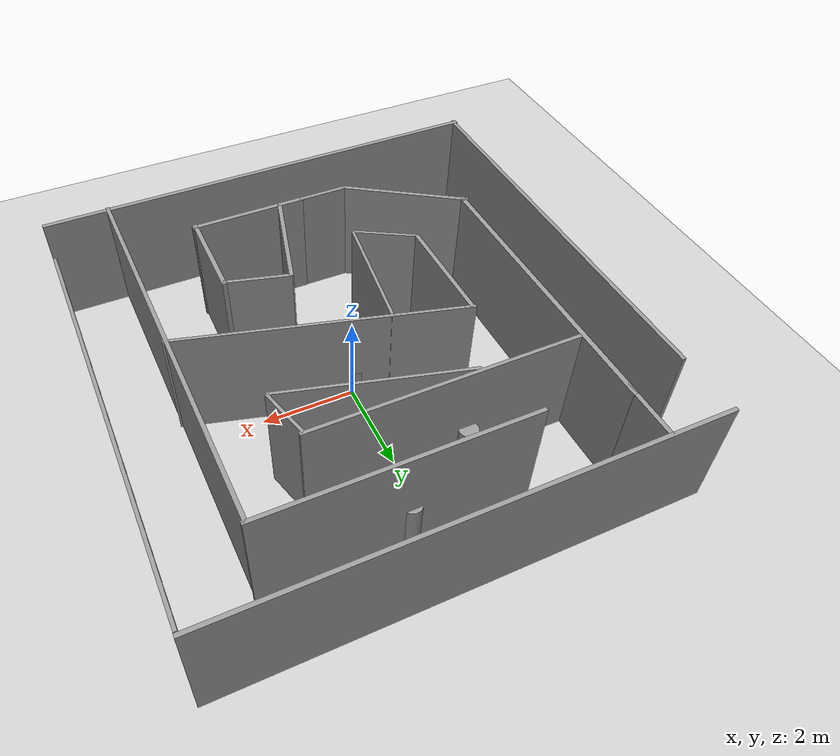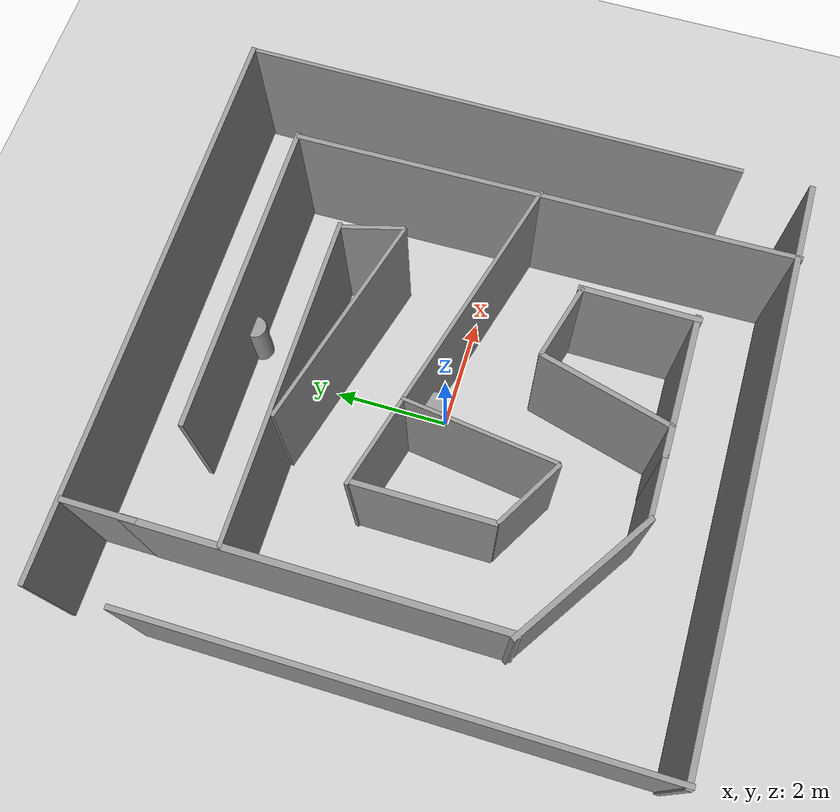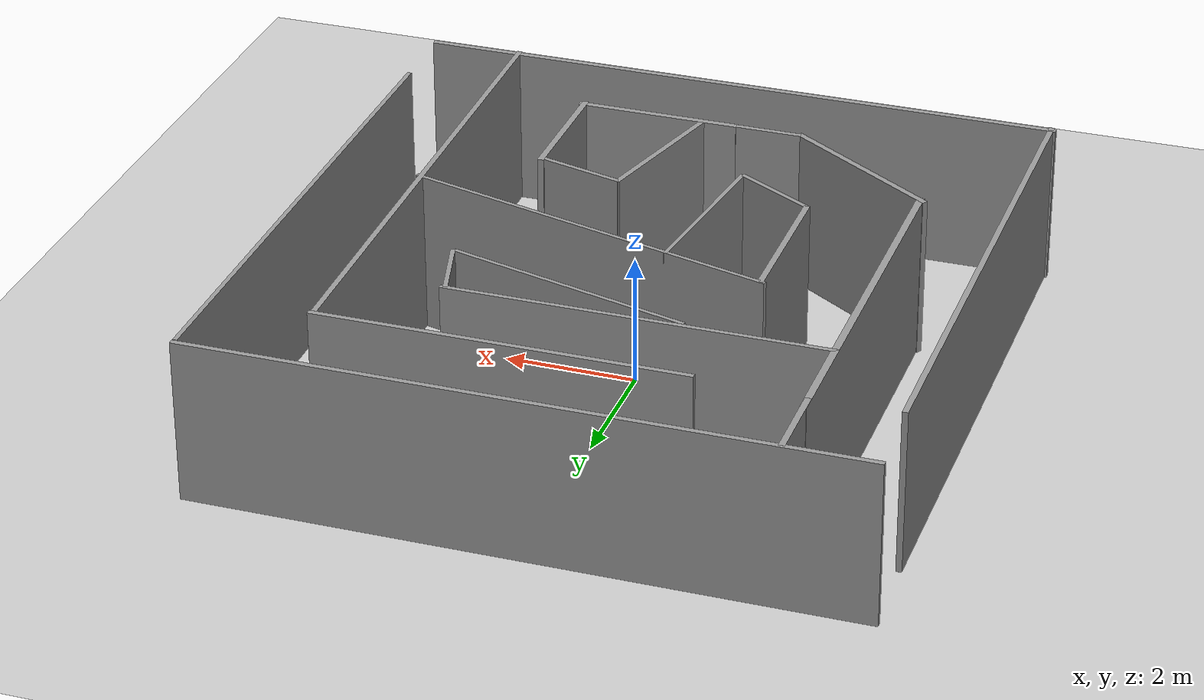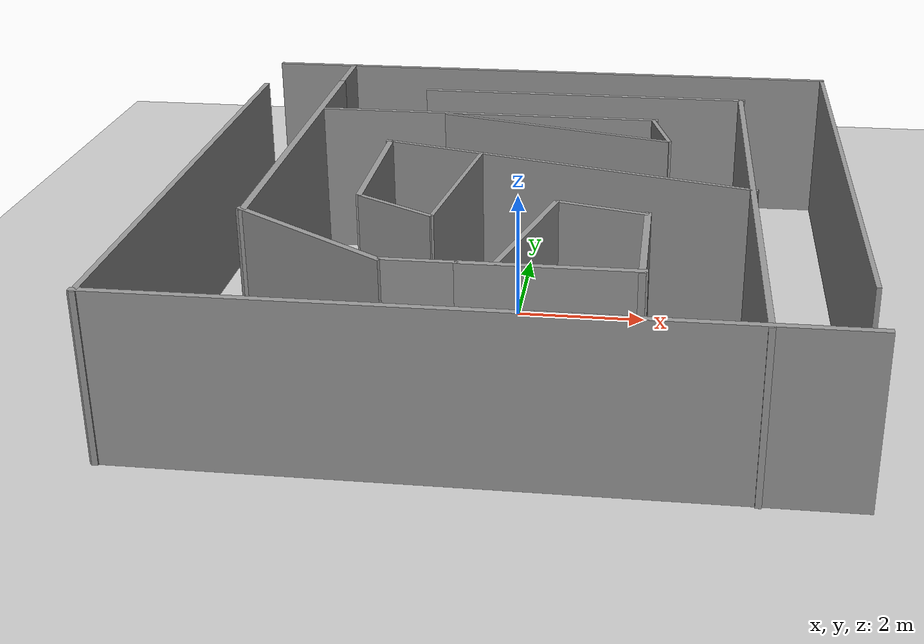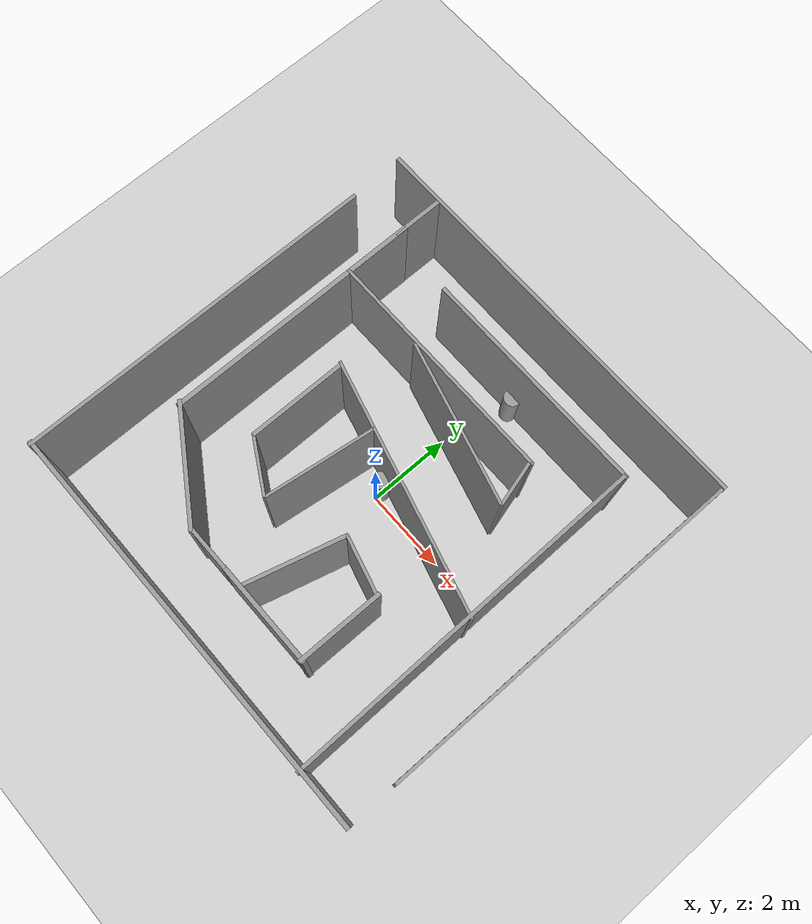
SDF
<sdf version="1.7">
 <world name="default">
  <model name="ground_plane">
   <static>1</static>
   <link name="link">
    <collision name="collision">
     <geometry><plane><normal>0 0 1</normal><size>100 100</size></plane></geometry>
     <surface>
      <contact><collide_bitmask>65535</collide_bitmask></contact>
      <friction><ode><mu>100</mu><mu2>50</mu2></ode></friction>
     </surface>
    </collision>
    <visual name="visual">
     <cast_shadows>0</cast_shadows>
     <geometry><plane><normal>0 0 1</normal><size>100 100</size></plane></geometry>
     <material>
      <script><uri>file://media/materials/scripts/gazebo.material</uri><name>Gazebo/Grey</name></script>
     </material>
    </visual>
   </link>
  </model>
  <model name="obstacle1">
   <link name="link">
    <inertial>
     <mass>1</mass>
     <inertia><ixx>0.145833</ixx><ixy>0</ixy><ixz>0</ixz><iyy>0.145833</iyy><iyz>0</iyz><izz>0.125</izz></inertia>
    </inertial>
    <visual name="visual">
     <geometry><cylinder><radius>0.2</radius><length>1</length></cylinder></geometry>
     <material>
      <script><name>Gazebo/Grey</name><uri>file://media/materials/scripts/gazebo.material</uri></script>
      <shader type="pixel"><normal_map>__default__</normal_map></shader>
      <ambient>0.3 0.3 0.3 1</ambient>
      <diffuse>0.7 0.7 0.7 1</diffuse>
      <specular>0.01 0.01 0.01 1</specular>
      <emissive>0 0 0 1</emissive>
     </material>
    </visual>
    <collision name="collision">
     <geometry><cylinder><radius>0.2</radius><length>1</length></cylinder></geometry>
     <surface>
      <friction>
       <ode><mu>1</mu><mu2>1</mu2><fdir1>0 0 0</fdir1><slip1>0</slip1><slip2>0</slip2></ode>
       <torsional>
        <coefficient>1</coefficient>
        <patch_radius>0</patch_radius>
        <surface_radius>0</surface_radius>
        <use_patch_radius>1</use_patch_radius>
        <ode><slip>0</slip></ode>
       </torsional>
      </friction>
      <bounce><restitution_coefficient>0</restitution_coefficient><threshold>1e+06</threshold></bounce>
      <contact>
       <collide_without_contact>0</collide_without_contact>
       <collide_without_contact_bitmask>1</collide_without_contact_bitmask>
       <collide_bitmask>1</collide_bitmask>
       <ode>
        <soft_cfm>0</soft_cfm>
        <soft_erp>0.2</soft_erp>
        <kp>1e+13</kp>
        <kd>1</kd>
        <max_vel>0.01</max_vel>
        <min_depth>0</min_depth>
       </ode>
       <bullet>
        <split_impulse>1</split_impulse>
        <split_impulse_penetration_threshold>-0.01</split_impulse_penetration_threshold>
        <soft_cfm>0</soft_cfm>
        <soft_erp>0.2</soft_erp>
        <kp>1e+13</kp>
        <kd>1</kd>
       </bullet>
      </contact>
     </surface>
    </collision>
   </link>
   <static>1</static>
   <pose>-0.024801 0.181411 0.5 0 -0 0</pose>
  </model>
  <model name="obstacle1_clone_clone_0">
   <link name="link">
    <inertial>
     <mass>1</mass>
     <inertia><ixx>0.145833</ixx><ixy>0</ixy><ixz>0</ixz><iyy>0.145833</iyy><iyz>0</iyz><izz>0.125</izz></inertia>
    </inertial>
    <visual name="visual">
     <geometry><cylinder><radius>0.2</radius><length>1</length></cylinder></geometry>
     <material>
      <script><name>Gazebo/Grey</name><uri>file://media/materials/scripts/gazebo.material</uri></script>
      <shader type="pixel"><normal_map>__default__</normal_map></shader>
      <ambient>0.3 0.3 0.3 1</ambient>
      <diffuse>0.7 0.7 0.7 1</diffuse>
      <specular>0.01 0.01 0.01 1</specular>
      <emissive>0 0 0 1</emissive>
     </material>
    </visual>
    <collision name="collision">
     <geometry><cylinder><radius>0.2</radius><length>1</length></cylinder></geometry>
     <surface>
      <friction>
       <ode><mu>1</mu><mu2>1</mu2><fdir1>0 0 0</fdir1><slip1>0</slip1><slip2>0</slip2></ode>
       <torsional>
        <coefficient>1</coefficient>
        <patch_radius>0</patch_radius>
        <surface_radius>0</surface_radius>
        <use_patch_radius>1</use_patch_radius>
        <ode><slip>0</slip></ode>
       </torsional>
      </friction>
      <bounce><restitution_coefficient>0</restitution_coefficient><threshold>1e+06</threshold></bounce>
      <contact>
       <collide_without_contact>0</collide_without_contact>
       <collide_without_contact_bitmask>1</collide_without_contact_bitmask>
       <collide_bitmask>1</collide_bitmask>
       <ode>
        <soft_cfm>0</soft_cfm>
        <soft_erp>0.2</soft_erp>
        <kp>1e+13</kp>
        <kd>1</kd>
        <max_vel>0.01</max_vel>
        <min_depth>0</min_depth>
       </ode>
       <bullet>
        <split_impulse>1</split_impulse>
        <split_impulse_penetration_threshold>-0.01</split_impulse_penetration_threshold>
        <soft_cfm>0</soft_cfm>
        <soft_erp>0.2</soft_erp>
        <kp>1e+13</kp>
        <kd>1</kd>
       </bullet>
      </contact>
     </surface>
    </collision>
   </link>
   <static>1</static>
   <pose>0.443455 3.59898 0.5 0 -0 0</pose>
  </model>
  <model name="obstacle1_clone_clone_1">
   <link name="link">
    <inertial>
     <mass>1</mass>
     <inertia><ixx>0.145833</ixx><ixy>0</ixy><ixz>0</ixz><iyy>0.145833</iyy><iyz>0</iyz><izz>0.125</izz></inertia>
    </inertial>
    <visual name="visual">
     <geometry><cylinder><radius>0.2</radius><length>1</length></cylinder></geometry>
     <material>
      <script><name>Gazebo/Grey</name><uri>file://media/materials/scripts/gazebo.material</uri></script>
      <shader type="pixel"><normal_map>__default__</normal_map></shader>
      <ambient>0.3 0.3 0.3 1</ambient>
      <diffuse>0.7 0.7 0.7 1</diffuse>
      <specular>0.01 0.01 0.01 1</specular>
      <emissive>0 0 0 1</emissive>
     </material>
    </visual>
    <collision name="collision">
     <geometry><cylinder><radius>0.2</radius><length>1</length></cylinder></geometry>
     <surface>
      <friction>
       <ode><mu>1</mu><mu2>1</mu2><fdir1>0 0 0</fdir1><slip1>0</slip1><slip2>0</slip2></ode>
       <torsional>
        <coefficient>1</coefficient>
        <patch_radius>0</patch_radius>
        <surface_radius>0</surface_radius>
        <use_patch_radius>1</use_patch_radius>
        <ode><slip>0</slip></ode>
       </torsional>
      </friction>
      <bounce><restitution_coefficient>0</restitution_coefficient><threshold>1e+06</threshold></bounce>
      <contact>
       <collide_without_contact>0</collide_without_contact>
       <collide_without_contact_bitmask>1</collide_without_contact_bitmask>
       <collide_bitmask>1</collide_bitmask>
       <ode>
        <soft_cfm>0</soft_cfm>
        <soft_erp>0.2</soft_erp>
        <kp>1e+13</kp>
        <kd>1</kd>
        <max_vel>0.01</max_vel>
        <min_depth>0</min_depth>
       </ode>
       <bullet>
        <split_impulse>1</split_impulse>
        <split_impulse_penetration_threshold>-0.01</split_impulse_penetration_threshold>
        <soft_cfm>0</soft_cfm>
        <soft_erp>0.2</soft_erp>
        <kp>1e+13</kp>
        <kd>1</kd>
       </bullet>
      </contact>
     </surface>
    </collision>
   </link>
   <static>1</static>
   <pose>-1.30434 2.53539 0.5 0 -0 0</pose>
  </model>
  <model name="map10x10_0">
   <link name="Wall_21">
    <pose>0 5.05436 0 0 -0 0</pose>
    <inertial>
     <inertia><ixx>0</ixx><ixy>0</ixy><ixz>0</ixz><iyy>0</iyy><iyz>0</iyz><izz>0</izz></inertia>
     <mass>0</mass>
    </inertial>
    <visual name="Wall_21_Visual">
     <pose>0 0 1.25 0 -0 0</pose>
     <geometry><box><size>10 0.085426 2.5</size></box></geometry>
     <material>
      <script><uri>file://media/materials/scripts/gazebo.material</uri><name>Gazebo/Grey</name></script>
      <ambient>1 1 1 1</ambient>
      <shader type="pixel"/>
     </material>
     <meta><layer>0</layer></meta>
    </visual>
    <collision name="Wall_21_Collision">
     <pose>0 0 1.25 0 -0 0</pose>
     <geometry><box><size>10 0.085426 2.5</size></box></geometry>
     <surface>
      <friction>
       <ode><mu>1</mu><mu2>1</mu2><fdir1>0 0 0</fdir1><slip1>0</slip1><slip2>0</slip2></ode>
       <torsional>
        <coefficient>1</coefficient>
        <patch_radius>0</patch_radius>
        <surface_radius>0</surface_radius>
        <use_patch_radius>1</use_patch_radius>
        <ode><slip>0</slip></ode>
       </torsional>
      </friction>
      <bounce><restitution_coefficient>0</restitution_coefficient><threshold>1e+06</threshold></bounce>
      <contact>
       <collide_without_contact>0</collide_without_contact>
       <collide_without_contact_bitmask>1</collide_without_contact_bitmask>
       <collide_bitmask>1</collide_bitmask>
       <ode>
        <soft_cfm>0</soft_cfm>
        <soft_erp>0.2</soft_erp>
        <kp>1e+13</kp>
        <kd>1</kd>
        <max_vel>0.01</max_vel>
        <min_depth>0</min_depth>
       </ode>
       <bullet>
        <split_impulse>1</split_impulse>
        <split_impulse_penetration_threshold>-0.01</split_impulse_penetration_threshold>
        <soft_cfm>0</soft_cfm>
        <soft_erp>0.2</soft_erp>
        <kp>1e+13</kp>
        <kd>1</kd>
       </bullet>
      </contact>
     </surface>
    </collision>
   </link>
   <link name="Wall_22">
    <pose>4.96053 0.625 0 0 0 -1.5708</pose>
    <inertial>
     <inertia><ixx>0</ixx><ixy>0</ixy><ixz>0</ixz><iyy>0</iyy><iyz>0</iyz><izz>0</izz></inertia>
     <mass>0</mass>
    </inertial>
    <visual name="Wall_22_Visual">
     <pose>0 0 1.25 0 -0 0</pose>
     <geometry><box><size>8.75 0.068596 2.5</size></box></geometry>
     <material>
      <script><uri>file://media/materials/scripts/gazebo.material</uri><name>Gazebo/Grey</name></script>
      <ambient>1 1 1 1</ambient>
      <shader type="pixel"/>
     </material>
     <meta><layer>0</layer></meta>
    </visual>
    <collision name="Wall_22_Collision">
     <pose>0 0 1.25 0 -0 0</pose>
     <geometry><box><size>8.75 0.068596 2.5</size></box></geometry>
     <surface>
      <friction>
       <ode><mu>1</mu><mu2>1</mu2><fdir1>0 0 0</fdir1><slip1>0</slip1><slip2>0</slip2></ode>
       <torsional>
        <coefficient>1</coefficient>
        <patch_radius>0</patch_radius>
        <surface_radius>0</surface_radius>
        <use_patch_radius>1</use_patch_radius>
        <ode><slip>0</slip></ode>
       </torsional>
      </friction>
      <bounce><restitution_coefficient>0</restitution_coefficient><threshold>1e+06</threshold></bounce>
      <contact>
       <collide_without_contact>0</collide_without_contact>
       <collide_without_contact_bitmask>1</collide_without_contact_bitmask>
       <collide_bitmask>1</collide_bitmask>
       <ode>
        <soft_cfm>0</soft_cfm>
        <soft_erp>0.2</soft_erp>
        <kp>1e+13</kp>
        <kd>1</kd>
        <max_vel>0.01</max_vel>
        <min_depth>0</min_depth>
       </ode>
       <bullet>
        <split_impulse>1</split_impulse>
        <split_impulse_penetration_threshold>-0.01</split_impulse_penetration_threshold>
        <soft_cfm>0</soft_cfm>
        <soft_erp>0.2</soft_erp>
        <kp>1e+13</kp>
        <kd>1</kd>
       </bullet>
      </contact>
     </surface>
    </collision>
   </link>
   <link name="Wall_25">
    <pose>0 -4.925 0 0 -0 0</pose>
    <inertial>
     <inertia><ixx>0</ixx><ixy>0</ixy><ixz>0</ixz><iyy>0</iyy><iyz>0</iyz><izz>0</izz></inertia>
     <mass>0</mass>
    </inertial>
    <visual name="Wall_25_Visual">
     <pose>0 0 1.25 0 -0 0</pose>
     <geometry><box><size>10 0.099762 2.5</size></box></geometry>
     <material>
      <script><uri>file://media/materials/scripts/gazebo.material</uri><name>Gazebo/Grey</name></script>
      <ambient>1 1 1 1</ambient>
      <shader type="pixel"/>
     </material>
     <meta><layer>0</layer></meta>
    </visual>
    <collision name="Wall_25_Collision">
     <pose>0 0 1.25 0 -0 0</pose>
     <geometry><box><size>10 0.099762 2.5</size></box></geometry>
     <surface>
      <friction>
       <ode><mu>1</mu><mu2>1</mu2><fdir1>0 0 0</fdir1><slip1>0</slip1><slip2>0</slip2></ode>
       <torsional>
        <coefficient>1</coefficient>
        <patch_radius>0</patch_radius>
        <surface_radius>0</surface_radius>
        <use_patch_radius>1</use_patch_radius>
        <ode><slip>0</slip></ode>
       </torsional>
      </friction>
      <bounce><restitution_coefficient>0</restitution_coefficient><threshold>1e+06</threshold></bounce>
      <contact>
       <collide_without_contact>0</collide_without_contact>
       <collide_without_contact_bitmask>1</collide_without_contact_bitmask>
       <collide_bitmask>1</collide_bitmask>
       <ode>
        <soft_cfm>0</soft_cfm>
        <soft_erp>0.2</soft_erp>
        <kp>1e+13</kp>
        <kd>1</kd>
        <max_vel>0.01</max_vel>
        <min_depth>0</min_depth>
       </ode>
       <bullet>
        <split_impulse>1</split_impulse>
        <split_impulse_penetration_threshold>-0.01</split_impulse_penetration_threshold>
        <soft_cfm>0</soft_cfm>
        <soft_erp>0.2</soft_erp>
        <kp>1e+13</kp>
        <kd>1</kd>
       </bullet>
      </contact>
     </surface>
    </collision>
   </link>
   <link name="Wall_27">
    <pose>-4.925 -0.625 0 0 -0 1.5708</pose>
    <inertial>
     <inertia><ixx>0</ixx><ixy>0</ixy><ixz>0</ixz><iyy>0</iyy><iyz>0</iyz><izz>0</izz></inertia>
     <mass>0</mass>
    </inertial>
    <visual name="Wall_27_Visual">
     <pose>0 0 1.25 0 -0 0</pose>
     <geometry><box><size>8.75 0.087231 2.5</size></box></geometry>
     <material>
      <script><uri>file://media/materials/scripts/gazebo.material</uri><name>Gazebo/Grey</name></script>
      <ambient>1 1 1 1</ambient>
      <shader type="pixel"/>
     </material>
     <meta><layer>0</layer></meta>
    </visual>
    <collision name="Wall_27_Collision">
     <pose>0 0 1.25 0 -0 0</pose>
     <geometry><box><size>8.75 0.087231 2.5</size></box></geometry>
     <surface>
      <friction>
       <ode><mu>1</mu><mu2>1</mu2><fdir1>0 0 0</fdir1><slip1>0</slip1><slip2>0</slip2></ode>
       <torsional>
        <coefficient>1</coefficient>
        <patch_radius>0</patch_radius>
        <surface_radius>0</surface_radius>
        <use_patch_radius>1</use_patch_radius>
        <ode><slip>0</slip></ode>
       </torsional>
      </friction>
      <bounce><restitution_coefficient>0</restitution_coefficient><threshold>1e+06</threshold></bounce>
      <contact>
       <collide_without_contact>0</collide_without_contact>
       <collide_without_contact_bitmask>1</collide_without_contact_bitmask>
       <collide_bitmask>1</collide_bitmask>
       <ode>
        <soft_cfm>0</soft_cfm>
        <soft_erp>0.2</soft_erp>
        <kp>1e+13</kp>
        <kd>1</kd>
        <max_vel>0.01</max_vel>
        <min_depth>0</min_depth>
       </ode>
       <bullet>
        <split_impulse>1</split_impulse>
        <split_impulse_penetration_threshold>-0.01</split_impulse_penetration_threshold>
        <soft_cfm>0</soft_cfm>
        <soft_erp>0.2</soft_erp>
        <kp>1e+13</kp>
        <kd>1</kd>
       </bullet>
      </contact>
     </surface>
    </collision>
   </link>
   <link name="Wall_32">
    <pose>-3.61806 0.947594 0 0 -0 1.5708</pose>
    <inertial>
     <inertia><ixx>0</ixx><ixy>0</ixy><ixz>0</ixz><iyy>0</iyy><iyz>0</iyz><izz>0</izz></inertia>
     <mass>0</mass>
    </inertial>
    <visual name="Wall_32_Visual">
     <pose>0 0 1.25 0 -0 0</pose>
     <geometry><box><size>6.25 0.108502 2.5</size></box></geometry>
     <material>
      <script><uri>file://media/materials/scripts/gazebo.material</uri><name>Gazebo/Grey</name></script>
      <ambient>1 1 1 1</ambient>
      <shader type="pixel"/>
     </material>
     <meta><layer>0</layer></meta>
    </visual>
    <collision name="Wall_32_Collision">
     <pose>0 0 1.25 0 -0 0</pose>
     <geometry><box><size>6.25 0.108502 2.5</size></box></geometry>
     <surface>
      <friction>
       <ode><mu>1</mu><mu2>1</mu2><fdir1>0 0 0</fdir1><slip1>0</slip1><slip2>0</slip2></ode>
       <torsional>
        <coefficient>1</coefficient>
        <patch_radius>0</patch_radius>
        <surface_radius>0</surface_radius>
        <use_patch_radius>1</use_patch_radius>
        <ode><slip>0</slip></ode>
       </torsional>
      </friction>
      <bounce><restitution_coefficient>0</restitution_coefficient><threshold>1e+06</threshold></bounce>
      <contact>
       <collide_without_contact>0</collide_without_contact>
       <collide_without_contact_bitmask>1</collide_without_contact_bitmask>
       <collide_bitmask>1</collide_bitmask>
       <ode>
        <soft_cfm>0</soft_cfm>
        <soft_erp>0.2</soft_erp>
        <kp>1e+13</kp>
        <kd>1</kd>
        <max_vel>0.01</max_vel>
        <min_depth>0</min_depth>
       </ode>
       <bullet>
        <split_impulse>1</split_impulse>
        <split_impulse_penetration_threshold>-0.01</split_impulse_penetration_threshold>
        <soft_cfm>0</soft_cfm>
        <soft_erp>0.2</soft_erp>
        <kp>1e+13</kp>
        <kd>1</kd>
       </bullet>
      </contact>
     </surface>
    </collision>
   </link>
   <link name="Wall_35">
    <pose>-2.53005 -2.83932 0 0 0 -0.584164</pose>
    <inertial>
     <inertia><ixx>0</ixx><ixy>0</ixy><ixz>0</ixz><iyy>0</iyy><iyz>0</iyz><izz>0</izz></inertia>
     <mass>0</mass>
    </inertial>
    <visual name="Wall_35_Visual">
     <pose>0 0 1.25 0 -0 0</pose>
     <geometry><box><size>2.82238 0.093217 2.5</size></box></geometry>
     <material>
      <script><uri>file://media/materials/scripts/gazebo.material</uri><name>Gazebo/Grey</name></script>
      <ambient>1 1 1 1</ambient>
      <shader type="pixel"/>
     </material>
     <meta><layer>0</layer></meta>
    </visual>
    <collision name="Wall_35_Collision">
     <pose>0 0 1.25 0 -0 0</pose>
     <geometry><box><size>2.82238 0.093217 2.5</size></box></geometry>
     <surface>
      <friction>
       <ode><mu>1</mu><mu2>1</mu2><fdir1>0 0 0</fdir1><slip1>0</slip1><slip2>0</slip2></ode>
       <torsional>
        <coefficient>1</coefficient>
        <patch_radius>0</patch_radius>
        <surface_radius>0</surface_radius>
        <use_patch_radius>1</use_patch_radius>
        <ode><slip>0</slip></ode>
       </torsional>
      </friction>
      <bounce><restitution_coefficient>0</restitution_coefficient><threshold>1e+06</threshold></bounce>
      <contact>
       <collide_without_contact>0</collide_without_contact>
       <collide_without_contact_bitmask>1</collide_without_contact_bitmask>
       <collide_bitmask>1</collide_bitmask>
       <ode>
        <soft_cfm>0</soft_cfm>
        <soft_erp>0.2</soft_erp>
        <kp>1e+13</kp>
        <kd>1</kd>
        <max_vel>0.01</max_vel>
        <min_depth>0</min_depth>
       </ode>
       <bullet>
        <split_impulse>1</split_impulse>
        <split_impulse_penetration_threshold>-0.01</split_impulse_penetration_threshold>
        <soft_cfm>0</soft_cfm>
        <soft_erp>0.2</soft_erp>
        <kp>1e+13</kp>
        <kd>1</kd>
       </bullet>
      </contact>
     </surface>
    </collision>
   </link>
   <link name="Wall_36">
    <pose>-0.865434 -3.57623 0 0 -0 0</pose>
    <inertial>
     <inertia><ixx>0</ixx><ixy>0</ixy><ixz>0</ixz><iyy>0</iyy><iyz>0</iyz><izz>0</izz></inertia>
     <mass>0</mass>
    </inertial>
    <visual name="Wall_36_Visual">
     <pose>0 0 1.25 0 -0 0</pose>
     <geometry><box><size>1.06435 0.085458 2.5</size></box></geometry>
     <material>
      <script><uri>file://media/materials/scripts/gazebo.material</uri><name>Gazebo/Grey</name></script>
      <ambient>1 1 1 1</ambient>
      <shader type="pixel"/>
     </material>
     <meta><layer>0</layer></meta>
    </visual>
    <collision name="Wall_36_Collision">
     <pose>0 0 1.25 0 -0 0</pose>
     <geometry><box><size>1.06435 0.085458 2.5</size></box></geometry>
     <surface>
      <friction>
       <ode><mu>1</mu><mu2>1</mu2><fdir1>0 0 0</fdir1><slip1>0</slip1><slip2>0</slip2></ode>
       <torsional>
        <coefficient>1</coefficient>
        <patch_radius>0</patch_radius>
        <surface_radius>0</surface_radius>
        <use_patch_radius>1</use_patch_radius>
        <ode><slip>0</slip></ode>
       </torsional>
      </friction>
      <bounce><restitution_coefficient>0</restitution_coefficient><threshold>1e+06</threshold></bounce>
      <contact>
       <collide_without_contact>0</collide_without_contact>
       <collide_without_contact_bitmask>1</collide_without_contact_bitmask>
       <collide_bitmask>1</collide_bitmask>
       <ode>
        <soft_cfm>0</soft_cfm>
        <soft_erp>0.2</soft_erp>
        <kp>1e+13</kp>
        <kd>1</kd>
        <max_vel>0.01</max_vel>
        <min_depth>0</min_depth>
       </ode>
       <bullet>
        <split_impulse>1</split_impulse>
        <split_impulse_penetration_threshold>-0.01</split_impulse_penetration_threshold>
        <soft_cfm>0</soft_cfm>
        <soft_erp>0.2</soft_erp>
        <kp>1e+13</kp>
        <kd>1</kd>
       </bullet>
      </contact>
     </surface>
    </collision>
   </link>
   <link name="Wall_46">
    <pose>0.859566 -3.57623 0 0 -0 0</pose>
    <inertial>
     <inertia><ixx>0</ixx><ixy>0</ixy><ixz>0</ixz><iyy>0</iyy><iyz>0</iyz><izz>0</izz></inertia>
     <mass>0</mass>
    </inertial>
    <visual name="Wall_46_Visual">
     <pose>0 0 1.25 0 -0 0</pose>
     <geometry><box><size>2.5 0.102021 2.5</size></box></geometry>
     <material>
      <script><uri>file://media/materials/scripts/gazebo.material</uri><name>Gazebo/Grey</name></script>
      <ambient>1 1 1 1</ambient>
      <shader type="pixel"/>
     </material>
     <meta><layer>0</layer></meta>
    </visual>
    <collision name="Wall_46_Collision">
     <pose>0 0 1.25 0 -0 0</pose>
     <geometry><box><size>2.5 0.102021 2.5</size></box></geometry>
     <surface>
      <friction>
       <ode><mu>1</mu><mu2>1</mu2><fdir1>0 0 0</fdir1><slip1>0</slip1><slip2>0</slip2></ode>
       <torsional>
        <coefficient>1</coefficient>
        <patch_radius>0</patch_radius>
        <surface_radius>0</surface_radius>
        <use_patch_radius>1</use_patch_radius>
        <ode><slip>0</slip></ode>
       </torsional>
      </friction>
      <bounce><restitution_coefficient>0</restitution_coefficient><threshold>1e+06</threshold></bounce>
      <contact>
       <collide_without_contact>0</collide_without_contact>
       <collide_without_contact_bitmask>1</collide_without_contact_bitmask>
       <collide_bitmask>1</collide_bitmask>
       <ode>
        <soft_cfm>0</soft_cfm>
        <soft_erp>0.2</soft_erp>
        <kp>1e+13</kp>
        <kd>1</kd>
        <max_vel>0.01</max_vel>
        <min_depth>0</min_depth>
       </ode>
       <bullet>
        <split_impulse>1</split_impulse>
        <split_impulse_penetration_threshold>-0.01</split_impulse_penetration_threshold>
        <soft_cfm>0</soft_cfm>
        <soft_erp>0.2</soft_erp>
        <kp>1e+13</kp>
        <kd>1</kd>
       </bullet>
      </contact>
     </surface>
    </collision>
   </link>
   <link name="Wall_51">
    <pose>-3.61806 4.42259 0 0 -0 1.5708</pose>
    <inertial>
     <inertia><ixx>0</ixx><ixy>0</ixy><ixz>0</ixz><iyy>0</iyy><iyz>0</iyz><izz>0</izz></inertia>
     <mass>0</mass>
    </inertial>
    <visual name="Wall_51_Visual">
     <pose>0 0 1.25 0 -0 0</pose>
     <geometry><box><size>1.25773 0.093464 2.5</size></box></geometry>
     <material>
      <script><uri>file://media/materials/scripts/gazebo.material</uri><name>Gazebo/Grey</name></script>
      <ambient>1 1 1 1</ambient>
      <shader type="pixel"/>
     </material>
     <meta><layer>0</layer></meta>
    </visual>
    <collision name="Wall_51_Collision">
     <pose>0 0 1.25 0 -0 0</pose>
     <geometry><box><size>1.25773 0.093464 2.5</size></box></geometry>
     <surface>
      <friction>
       <ode><mu>1</mu><mu2>1</mu2><fdir1>0 0 0</fdir1><slip1>0</slip1><slip2>0</slip2></ode>
       <torsional>
        <coefficient>1</coefficient>
        <patch_radius>0</patch_radius>
        <surface_radius>0</surface_radius>
        <use_patch_radius>1</use_patch_radius>
        <ode><slip>0</slip></ode>
       </torsional>
      </friction>
      <bounce><restitution_coefficient>0</restitution_coefficient><threshold>1e+06</threshold></bounce>
      <contact>
       <collide_without_contact>0</collide_without_contact>
       <collide_without_contact_bitmask>1</collide_without_contact_bitmask>
       <collide_bitmask>1</collide_bitmask>
       <ode>
        <soft_cfm>0</soft_cfm>
        <soft_erp>0.2</soft_erp>
        <kp>1e+13</kp>
        <kd>1</kd>
        <max_vel>0.01</max_vel>
        <min_depth>0</min_depth>
       </ode>
       <bullet>
        <split_impulse>1</split_impulse>
        <split_impulse_penetration_threshold>-0.01</split_impulse_penetration_threshold>
        <soft_cfm>0</soft_cfm>
        <soft_erp>0.2</soft_erp>
        <kp>1e+13</kp>
        <kd>1</kd>
       </bullet>
      </contact>
     </surface>
    </collision>
   </link>
   <link name="Wall_55">
    <pose>0.766569 3.71333 0 0 -0 3.14159</pose>
    <inertial>
     <inertia><ixx>0</ixx><ixy>0</ixy><ixz>0</ixz><iyy>0</iyy><iyz>0</iyz><izz>0</izz></inertia>
     <mass>0</mass>
    </inertial>
    <visual name="Wall_55_Visual">
     <pose>0 0 1.25 0 -0 0</pose>
     <geometry><box><size>5.56121 0.084689 2.5</size></box></geometry>
     <material>
      <script><uri>file://media/materials/scripts/gazebo.material</uri><name>Gazebo/Grey</name></script>
      <ambient>1 1 1 1</ambient>
      <shader type="pixel"/>
     </material>
     <meta><layer>0</layer></meta>
    </visual>
    <collision name="Wall_55_Collision">
     <pose>0 0 1.25 0 -0 0</pose>
     <geometry><box><size>5.56121 0.084689 2.5</size></box></geometry>
     <surface>
      <friction>
       <ode><mu>1</mu><mu2>1</mu2><fdir1>0 0 0</fdir1><slip1>0</slip1><slip2>0</slip2></ode>
       <torsional>
        <coefficient>1</coefficient>
        <patch_radius>0</patch_radius>
        <surface_radius>0</surface_radius>
        <use_patch_radius>1</use_patch_radius>
        <ode><slip>0</slip></ode>
       </torsional>
      </friction>
      <bounce><restitution_coefficient>0</restitution_coefficient><threshold>1e+06</threshold></bounce>
      <contact>
       <collide_without_contact>0</collide_without_contact>
       <collide_without_contact_bitmask>1</collide_without_contact_bitmask>
       <collide_bitmask>1</collide_bitmask>
       <ode>
        <soft_cfm>0</soft_cfm>
        <soft_erp>0.2</soft_erp>
        <kp>1e+13</kp>
        <kd>1</kd>
        <max_vel>0.01</max_vel>
        <min_depth>0</min_depth>
       </ode>
       <bullet>
        <split_impulse>1</split_impulse>
        <split_impulse_penetration_threshold>-0.01</split_impulse_penetration_threshold>
        <soft_cfm>0</soft_cfm>
        <soft_erp>0.2</soft_erp>
        <kp>1e+13</kp>
        <kd>1</kd>
       </bullet>
      </contact>
     </surface>
    </collision>
   </link>
   <link name="Wall_55_clone">
    <pose>3.53556 -0.641402 0 0 -0 1.5842</pose>
    <inertial>
     <inertia><ixx>0</ixx><ixy>0</ixy><ixz>0</ixz><iyy>0</iyy><iyz>0</iyz><izz>0</izz></inertia>
     <mass>0</mass>
    </inertial>
    <visual name="Wall_55_Visual">
     <pose>0 0 1.25 0 -0 0</pose>
     <geometry><box><size>8.73119 0.084689 2.5</size></box></geometry>
     <material>
      <script><uri>file://media/materials/scripts/gazebo.material</uri><name>Gazebo/Grey</name></script>
      <ambient>1 1 1 1</ambient>
      <shader type="pixel"/>
     </material>
     <meta><layer>0</layer></meta>
    </visual>
    <collision name="Wall_55_Collision">
     <pose>0 0 1.25 0 -0 0</pose>
     <geometry><box><size>8.73119 0.084689 2.5</size></box></geometry>
     <surface>
      <friction>
       <ode><mu>1</mu><mu2>1</mu2><fdir1>0 0 0</fdir1><slip1>0</slip1><slip2>0</slip2></ode>
       <torsional>
        <coefficient>1</coefficient>
        <patch_radius>0</patch_radius>
        <surface_radius>0</surface_radius>
        <use_patch_radius>1</use_patch_radius>
        <ode><slip>0</slip></ode>
       </torsional>
      </friction>
      <bounce><restitution_coefficient>0</restitution_coefficient><threshold>1e+06</threshold></bounce>
      <contact>
       <collide_without_contact>0</collide_without_contact>
       <collide_without_contact_bitmask>1</collide_without_contact_bitmask>
       <collide_bitmask>1</collide_bitmask>
       <ode>
        <soft_cfm>0</soft_cfm>
        <soft_erp>0.2</soft_erp>
        <kp>1e+13</kp>
        <kd>1</kd>
        <max_vel>0.01</max_vel>
        <min_depth>0</min_depth>
       </ode>
       <bullet>
        <split_impulse>1</split_impulse>
        <split_impulse_penetration_threshold>-0.01</split_impulse_penetration_threshold>
        <soft_cfm>0</soft_cfm>
        <soft_erp>0.2</soft_erp>
        <kp>1e+13</kp>
        <kd>1</kd>
       </bullet>
      </contact>
     </surface>
    </collision>
   </link>
   <link name="Wall_57">
    <pose>-0.791463 2.47283 0 0 -0 0</pose>
    <inertial>
     <inertia><ixx>0</ixx><ixy>0</ixy><ixz>0</ixz><iyy>0</iyy><iyz>0</iyz><izz>0</izz></inertia>
     <mass>0</mass>
    </inertial>
    <visual name="Wall_57_Visual">
     <pose>0 0 1.25 0 -0 0</pose>
     <geometry><box><size>5.75 0.0763 2.5</size></box></geometry>
     <material>
      <script><uri>file://media/materials/scripts/gazebo.material</uri><name>Gazebo/Grey</name></script>
      <ambient>1 1 1 1</ambient>
      <shader type="pixel"/>
     </material>
     <meta><layer>0</layer></meta>
    </visual>
    <collision name="Wall_57_Collision">
     <pose>0 0 1.25 0 -0 0</pose>
     <geometry><box><size>5.75 0.0763 2.5</size></box></geometry>
     <surface>
      <friction>
       <ode><mu>1</mu><mu2>1</mu2><fdir1>0 0 0</fdir1><slip1>0</slip1><slip2>0</slip2></ode>
       <torsional>
        <coefficient>1</coefficient>
        <patch_radius>0</patch_radius>
        <surface_radius>0</surface_radius>
        <use_patch_radius>1</use_patch_radius>
        <ode><slip>0</slip></ode>
       </torsional>
      </friction>
      <bounce><restitution_coefficient>0</restitution_coefficient><threshold>1e+06</threshold></bounce>
      <contact>
       <collide_without_contact>0</collide_without_contact>
       <collide_without_contact_bitmask>1</collide_without_contact_bitmask>
       <collide_bitmask>1</collide_bitmask>
       <ode>
        <soft_cfm>0</soft_cfm>
        <soft_erp>0.2</soft_erp>
        <kp>1e+13</kp>
        <kd>1</kd>
        <max_vel>0.01</max_vel>
        <min_depth>0</min_depth>
       </ode>
       <bullet>
        <split_impulse>1</split_impulse>
        <split_impulse_penetration_threshold>-0.01</split_impulse_penetration_threshold>
        <soft_cfm>0</soft_cfm>
        <soft_erp>0.2</soft_erp>
        <kp>1e+13</kp>
        <kd>1</kd>
       </bullet>
      </contact>
     </surface>
    </collision>
   </link>
   <link name="Wall_58">
    <pose>2.14745 1.94336 0 0 0 -1.309</pose>
    <inertial>
     <inertia><ixx>0</ixx><ixy>0</ixy><ixz>0</ixz><iyy>0</iyy><iyz>0</iyz><izz>0</izz></inertia>
     <mass>0</mass>
    </inertial>
    <visual name="Wall_58_Visual">
     <pose>0 0 1.25 0 -0 0</pose>
     <geometry><box><size>1.08553 0.069693 2.5</size></box></geometry>
     <material>
      <script><uri>file://media/materials/scripts/gazebo.material</uri><name>Gazebo/Grey</name></script>
      <ambient>1 1 1 1</ambient>
      <shader type="pixel"/>
     </material>
     <meta><layer>0</layer></meta>
    </visual>
    <collision name="Wall_58_Collision">
     <pose>0 0 1.25 0 -0 0</pose>
     <geometry><box><size>1.08553 0.069693 2.5</size></box></geometry>
     <surface>
      <friction>
       <ode><mu>1</mu><mu2>1</mu2><fdir1>0 0 0</fdir1><slip1>0</slip1><slip2>0</slip2></ode>
       <torsional>
        <coefficient>1</coefficient>
        <patch_radius>0</patch_radius>
        <surface_radius>0</surface_radius>
        <use_patch_radius>1</use_patch_radius>
        <ode><slip>0</slip></ode>
       </torsional>
      </friction>
      <bounce><restitution_coefficient>0</restitution_coefficient><threshold>1e+06</threshold></bounce>
      <contact>
       <collide_without_contact>0</collide_without_contact>
       <collide_without_contact_bitmask>1</collide_without_contact_bitmask>
       <collide_bitmask>1</collide_bitmask>
       <ode>
        <soft_cfm>0</soft_cfm>
        <soft_erp>0.2</soft_erp>
        <kp>1e+13</kp>
        <kd>1</kd>
        <max_vel>0.01</max_vel>
        <min_depth>0</min_depth>
       </ode>
       <bullet>
        <split_impulse>1</split_impulse>
        <split_impulse_penetration_threshold>-0.01</split_impulse_penetration_threshold>
        <soft_cfm>0</soft_cfm>
        <soft_erp>0.2</soft_erp>
        <kp>1e+13</kp>
        <kd>1</kd>
       </bullet>
      </contact>
     </surface>
    </collision>
   </link>
   <link name="Wall_59">
    <pose>0.410936 1.91467 0 0 -0 2.87979</pose>
    <inertial>
     <inertia><ixx>0</ixx><ixy>0</ixy><ixz>0</ixz><iyy>0</iyy><iyz>0</iyz><izz>0</izz></inertia>
     <mass>0</mass>
    </inertial>
    <visual name="Wall_59_Visual">
     <pose>0 0 1.25 0 -0 0</pose>
     <geometry><box><size>3.88394 0.066364 2.5</size></box></geometry>
     <material>
      <script><uri>file://media/materials/scripts/gazebo.material</uri><name>Gazebo/Grey</name></script>
      <ambient>1 1 1 1</ambient>
      <shader type="pixel"/>
     </material>
     <meta><layer>0</layer></meta>
    </visual>
    <collision name="Wall_59_Collision">
     <pose>0 0 1.25 0 -0 0</pose>
     <geometry><box><size>3.88394 0.066364 2.5</size></box></geometry>
     <surface>
      <friction>
       <ode><mu>1</mu><mu2>1</mu2><fdir1>0 0 0</fdir1><slip1>0</slip1><slip2>0</slip2></ode>
       <torsional>
        <coefficient>1</coefficient>
        <patch_radius>0</patch_radius>
        <surface_radius>0</surface_radius>
        <use_patch_radius>1</use_patch_radius>
        <ode><slip>0</slip></ode>
       </torsional>
      </friction>
      <bounce><restitution_coefficient>0</restitution_coefficient><threshold>1e+06</threshold></bounce>
      <contact>
       <collide_without_contact>0</collide_without_contact>
       <collide_without_contact_bitmask>1</collide_without_contact_bitmask>
       <collide_bitmask>1</collide_bitmask>
       <ode>
        <soft_cfm>0</soft_cfm>
        <soft_erp>0.2</soft_erp>
        <kp>1e+13</kp>
        <kd>1</kd>
        <max_vel>0.01</max_vel>
        <min_depth>0</min_depth>
       </ode>
       <bullet>
        <split_impulse>1</split_impulse>
        <split_impulse_penetration_threshold>-0.01</split_impulse_penetration_threshold>
        <soft_cfm>0</soft_cfm>
        <soft_erp>0.2</soft_erp>
        <kp>1e+13</kp>
        <kd>1</kd>
       </bullet>
      </contact>
     </surface>
    </collision>
   </link>
   <link name="Wall_61">
    <pose>0.712057 0.197452 0 0 -0 2.87979</pose>
    <inertial>
     <inertia><ixx>0</ixx><ixy>0</ixy><ixz>0</ixz><iyy>0</iyy><iyz>0</iyz><izz>0</izz></inertia>
     <mass>0</mass>
    </inertial>
    <visual name="Wall_61_Visual">
     <pose>0 0 1.25 0 -0 0</pose>
     <geometry><box><size>6 0.065419 2.5</size></box></geometry>
     <material>
      <script><uri>file://media/materials/scripts/gazebo.material</uri><name>Gazebo/Grey</name></script>
      <ambient>1 1 1 1</ambient>
      <shader type="pixel"/>
     </material>
     <meta><layer>0</layer></meta>
    </visual>
    <collision name="Wall_61_Collision">
     <pose>0 0 1.25 0 -0 0</pose>
     <geometry><box><size>6 0.065419 2.5</size></box></geometry>
     <surface>
      <friction>
       <ode><mu>1</mu><mu2>1</mu2><fdir1>0 0 0</fdir1><slip1>0</slip1><slip2>0</slip2></ode>
       <torsional>
        <coefficient>1</coefficient>
        <patch_radius>0</patch_radius>
        <surface_radius>0</surface_radius>
        <use_patch_radius>1</use_patch_radius>
        <ode><slip>0</slip></ode>
       </torsional>
      </friction>
      <bounce><restitution_coefficient>0</restitution_coefficient><threshold>1e+06</threshold></bounce>
      <contact>
       <collide_without_contact>0</collide_without_contact>
       <collide_without_contact_bitmask>1</collide_without_contact_bitmask>
       <collide_bitmask>1</collide_bitmask>
       <ode>
        <soft_cfm>0</soft_cfm>
        <soft_erp>0.2</soft_erp>
        <kp>1e+13</kp>
        <kd>1</kd>
        <max_vel>0.01</max_vel>
        <min_depth>0</min_depth>
       </ode>
       <bullet>
        <split_impulse>1</split_impulse>
        <split_impulse_penetration_threshold>-0.01</split_impulse_penetration_threshold>
        <soft_cfm>0</soft_cfm>
        <soft_erp>0.2</soft_erp>
        <kp>1e+13</kp>
        <kd>1</kd>
       </bullet>
      </contact>
     </surface>
    </collision>
   </link>
   <link name="Wall_62">
    <pose>-2.11328 -0.220503 0 0 0 -1.5708</pose>
    <inertial>
     <inertia><ixx>0</ixx><ixy>0</ixy><ixz>0</ixz><iyy>0</iyy><iyz>0</iyz><izz>0</izz></inertia>
     <mass>0</mass>
    </inertial>
    <visual name="Wall_62_Visual">
     <pose>0 0 1.25 0 -0 0</pose>
     <geometry><box><size>2.38542 0.092953 2.5</size></box></geometry>
     <material>
      <script><uri>file://media/materials/scripts/gazebo.material</uri><name>Gazebo/Grey</name></script>
      <ambient>1 1 1 1</ambient>
      <shader type="pixel"/>
     </material>
     <meta><layer>0</layer></meta>
    </visual>
    <collision name="Wall_62_Collision">
     <pose>0 0 1.25 0 -0 0</pose>
     <geometry><box><size>2.38542 0.092953 2.5</size></box></geometry>
     <surface>
      <friction>
       <ode><mu>1</mu><mu2>1</mu2><fdir1>0 0 0</fdir1><slip1>0</slip1><slip2>0</slip2></ode>
       <torsional>
        <coefficient>1</coefficient>
        <patch_radius>0</patch_radius>
        <surface_radius>0</surface_radius>
        <use_patch_radius>1</use_patch_radius>
        <ode><slip>0</slip></ode>
       </torsional>
      </friction>
      <bounce><restitution_coefficient>0</restitution_coefficient><threshold>1e+06</threshold></bounce>
      <contact>
       <collide_without_contact>0</collide_without_contact>
       <collide_without_contact_bitmask>1</collide_without_contact_bitmask>
       <collide_bitmask>1</collide_bitmask>
       <ode>
        <soft_cfm>0</soft_cfm>
        <soft_erp>0.2</soft_erp>
        <kp>1e+13</kp>
        <kd>1</kd>
        <max_vel>0.01</max_vel>
        <min_depth>0</min_depth>
       </ode>
       <bullet>
        <split_impulse>1</split_impulse>
        <split_impulse_penetration_threshold>-0.01</split_impulse_penetration_threshold>
        <soft_cfm>0</soft_cfm>
        <soft_erp>0.2</soft_erp>
        <kp>1e+13</kp>
        <kd>1</kd>
       </bullet>
      </contact>
     </surface>
    </collision>
   </link>
   <link name="Wall_63">
    <pose>-1.52871 -1.733 0 0 0 -0.523599</pose>
    <inertial>
     <inertia><ixx>0</ixx><ixy>0</ixy><ixz>0</ixz><iyy>0</iyy><iyz>0</iyz><izz>0</izz></inertia>
     <mass>0</mass>
    </inertial>
    <visual name="Wall_63_Visual">
     <pose>0 0 1.25 0 -0 0</pose>
     <geometry><box><size>1.34592 0.069691 2.5</size></box></geometry>
     <material>
      <script><uri>file://media/materials/scripts/gazebo.material</uri><name>Gazebo/Grey</name></script>
      <ambient>1 1 1 1</ambient>
      <shader type="pixel"/>
     </material>
     <meta><layer>0</layer></meta>
    </visual>
    <collision name="Wall_63_Collision">
     <pose>0 0 1.25 0 -0 0</pose>
     <geometry><box><size>1.34592 0.069691 2.5</size></box></geometry>
     <surface>
      <friction>
       <ode><mu>1</mu><mu2>1</mu2><fdir1>0 0 0</fdir1><slip1>0</slip1><slip2>0</slip2></ode>
       <torsional>
        <coefficient>1</coefficient>
        <patch_radius>0</patch_radius>
        <surface_radius>0</surface_radius>
        <use_patch_radius>1</use_patch_radius>
        <ode><slip>0</slip></ode>
       </torsional>
      </friction>
      <bounce><restitution_coefficient>0</restitution_coefficient><threshold>1e+06</threshold></bounce>
      <contact>
       <collide_without_contact>0</collide_without_contact>
       <collide_without_contact_bitmask>1</collide_without_contact_bitmask>
       <collide_bitmask>1</collide_bitmask>
       <ode>
        <soft_cfm>0</soft_cfm>
        <soft_erp>0.2</soft_erp>
        <kp>1e+13</kp>
        <kd>1</kd>
        <max_vel>0.01</max_vel>
        <min_depth>0</min_depth>
       </ode>
       <bullet>
        <split_impulse>1</split_impulse>
        <split_impulse_penetration_threshold>-0.01</split_impulse_penetration_threshold>
        <soft_cfm>0</soft_cfm>
        <soft_erp>0.2</soft_erp>
        <kp>1e+13</kp>
        <kd>1</kd>
       </bullet>
      </contact>
     </surface>
    </collision>
   </link>
   <link name="Wall_64">
    <pose>-0.770983 -0.745467 0 0 -0 1.44085</pose>
    <inertial>
     <inertia><ixx>0</ixx><ixy>0</ixy><ixz>0</ixz><iyy>0</iyy><iyz>0</iyz><izz>0</izz></inertia>
     <mass>0</mass>
    </inertial>
    <visual name="Wall_64_Visual">
     <pose>0 0 1.25 0 -0 0</pose>
     <geometry><box><size>2.67136 0.063104 2.5</size></box></geometry>
     <material>
      <script><uri>file://media/materials/scripts/gazebo.material</uri><name>Gazebo/Grey</name></script>
      <ambient>1 1 1 1</ambient>
      <shader type="pixel"/>
     </material>
     <meta><layer>0</layer></meta>
    </visual>
    <collision name="Wall_64_Collision">
     <pose>0 0 1.25 0 -0 0</pose>
     <geometry><box><size>2.67136 0.063104 2.5</size></box></geometry>
     <surface>
      <friction>
       <ode><mu>1</mu><mu2>1</mu2><fdir1>0 0 0</fdir1><slip1>0</slip1><slip2>0</slip2></ode>
       <torsional>
        <coefficient>1</coefficient>
        <patch_radius>0</patch_radius>
        <surface_radius>0</surface_radius>
        <use_patch_radius>1</use_patch_radius>
        <ode><slip>0</slip></ode>
       </torsional>
      </friction>
      <bounce><restitution_coefficient>0</restitution_coefficient><threshold>1e+06</threshold></bounce>
      <contact>
       <collide_without_contact>0</collide_without_contact>
       <collide_without_contact_bitmask>1</collide_without_contact_bitmask>
       <collide_bitmask>1</collide_bitmask>
       <ode>
        <soft_cfm>0</soft_cfm>
        <soft_erp>0.2</soft_erp>
        <kp>1e+13</kp>
        <kd>1</kd>
        <max_vel>0.01</max_vel>
        <min_depth>0</min_depth>
       </ode>
       <bullet>
        <split_impulse>1</split_impulse>
        <split_impulse_penetration_threshold>-0.01</split_impulse_penetration_threshold>
        <soft_cfm>0</soft_cfm>
        <soft_erp>0.2</soft_erp>
        <kp>1e+13</kp>
        <kd>1</kd>
       </bullet>
      </contact>
     </surface>
    </collision>
   </link>
   <link name="Wall_66">
    <pose>0.436677 -2.45705 0 0 -0 1.309</pose>
    <inertial>
     <inertia><ixx>0</ixx><ixy>0</ixy><ixz>0</ixz><iyy>0</iyy><iyz>0</iyz><izz>0</izz></inertia>
     <mass>0</mass>
    </inertial>
    <visual name="Wall_66_Visual">
     <pose>0 0 1.25 0 -0 0</pose>
     <geometry><box><size>2.3969 0.086766 2.5</size></box></geometry>
     <material>
      <script><uri>file://media/materials/scripts/gazebo.material</uri><name>Gazebo/Grey</name></script>
      <ambient>1 1 1 1</ambient>
      <shader type="pixel"/>
     </material>
     <meta><layer>0</layer></meta>
    </visual>
    <collision name="Wall_66_Collision">
     <pose>0 0 1.25 0 -0 0</pose>
     <geometry><box><size>2.3969 0.086766 2.5</size></box></geometry>
     <surface>
      <friction>
       <ode><mu>1</mu><mu2>1</mu2><fdir1>0 0 0</fdir1><slip1>0</slip1><slip2>0</slip2></ode>
       <torsional>
        <coefficient>1</coefficient>
        <patch_radius>0</patch_radius>
        <surface_radius>0</surface_radius>
        <use_patch_radius>1</use_patch_radius>
        <ode><slip>0</slip></ode>
       </torsional>
      </friction>
      <bounce><restitution_coefficient>0</restitution_coefficient><threshold>1e+06</threshold></bounce>
      <contact>
       <collide_without_contact>0</collide_without_contact>
       <collide_without_contact_bitmask>1</collide_without_contact_bitmask>
       <collide_bitmask>1</collide_bitmask>
       <ode>
        <soft_cfm>0</soft_cfm>
        <soft_erp>0.2</soft_erp>
        <kp>1e+13</kp>
        <kd>1</kd>
        <max_vel>0.01</max_vel>
        <min_depth>0</min_depth>
       </ode>
       <bullet>
        <split_impulse>1</split_impulse>
        <split_impulse_penetration_threshold>-0.01</split_impulse_penetration_threshold>
        <soft_cfm>0</soft_cfm>
        <soft_erp>0.2</soft_erp>
        <kp>1e+13</kp>
        <kd>1</kd>
       </bullet>
      </contact>
     </surface>
    </collision>
   </link>
   <link name="Wall_68">
    <pose>1.39279 -1.49679 0 0 0 -0.261799</pose>
    <inertial>
     <inertia><ixx>0</ixx><ixy>0</ixy><ixz>0</ixz><iyy>0</iyy><iyz>0</iyz><izz>0</izz></inertia>
     <mass>0</mass>
    </inertial>
    <visual name="Wall_68_Visual">
     <pose>0 0 1.25 0 -0 0</pose>
     <geometry><box><size>1.37848 0.074926 2.5</size></box></geometry>
     <material>
      <script><uri>file://media/materials/scripts/gazebo.material</uri><name>Gazebo/Grey</name></script>
      <ambient>1 1 1 1</ambient>
      <shader type="pixel"/>
     </material>
     <meta><layer>0</layer></meta>
    </visual>
    <collision name="Wall_68_Collision">
     <pose>0 0 1.25 0 -0 0</pose>
     <geometry><box><size>1.37848 0.074926 2.5</size></box></geometry>
     <surface>
      <friction>
       <ode><mu>1</mu><mu2>1</mu2><fdir1>0 0 0</fdir1><slip1>0</slip1><slip2>0</slip2></ode>
       <torsional>
        <coefficient>1</coefficient>
        <patch_radius>0</patch_radius>
        <surface_radius>0</surface_radius>
        <use_patch_radius>1</use_patch_radius>
        <ode><slip>0</slip></ode>
       </torsional>
      </friction>
      <bounce><restitution_coefficient>0</restitution_coefficient><threshold>1e+06</threshold></bounce>
      <contact>
       <collide_without_contact>0</collide_without_contact>
       <collide_without_contact_bitmask>1</collide_without_contact_bitmask>
       <collide_bitmask>1</collide_bitmask>
       <ode>
        <soft_cfm>0</soft_cfm>
        <soft_erp>0.2</soft_erp>
        <kp>1e+13</kp>
        <kd>1</kd>
        <max_vel>0.01</max_vel>
        <min_depth>0</min_depth>
       </ode>
       <bullet>
        <split_impulse>1</split_impulse>
        <split_impulse_penetration_threshold>-0.01</split_impulse_penetration_threshold>
        <soft_cfm>0</soft_cfm>
        <soft_erp>0.2</soft_erp>
        <kp>1e+13</kp>
        <kd>1</kd>
       </bullet>
      </contact>
     </surface>
    </collision>
   </link>
   <link name="Wall_69">
    <pose>2.03968 -2.62386 0 0 0 -1.57616</pose>
    <inertial>
     <inertia><ixx>0</ixx><ixy>0</ixy><ixz>0</ixz><iyy>0</iyy><iyz>0</iyz><izz>0</izz></inertia>
     <mass>0</mass>
    </inertial>
    <visual name="Wall_69_Visual">
     <pose>0 0 1.25 0 -0 0</pose>
     <geometry><box><size>2.05476 0.097849 2.5</size></box></geometry>
     <material>
      <script><uri>file://media/materials/scripts/gazebo.material</uri><name>Gazebo/Grey</name></script>
      <ambient>1 1 1 1</ambient>
      <shader type="pixel"/>
     </material>
     <meta><layer>0</layer></meta>
    </visual>
    <collision name="Wall_69_Collision">
     <pose>0 0 1.25 0 -0 0</pose>
     <geometry><box><size>2.05476 0.097849 2.5</size></box></geometry>
     <surface>
      <friction>
       <ode><mu>1</mu><mu2>1</mu2><fdir1>0 0 0</fdir1><slip1>0</slip1><slip2>0</slip2></ode>
       <torsional>
        <coefficient>1</coefficient>
        <patch_radius>0</patch_radius>
        <surface_radius>0</surface_radius>
        <use_patch_radius>1</use_patch_radius>
        <ode><slip>0</slip></ode>
       </torsional>
      </friction>
      <bounce><restitution_coefficient>0</restitution_coefficient><threshold>1e+06</threshold></bounce>
      <contact>
       <collide_without_contact>0</collide_without_contact>
       <collide_without_contact_bitmask>1</collide_without_contact_bitmask>
       <collide_bitmask>1</collide_bitmask>
       <ode>
        <soft_cfm>0</soft_cfm>
        <soft_erp>0.2</soft_erp>
        <kp>1e+13</kp>
        <kd>1</kd>
        <max_vel>0.01</max_vel>
        <min_depth>0</min_depth>
       </ode>
       <bullet>
        <split_impulse>1</split_impulse>
        <split_impulse_penetration_threshold>-0.01</split_impulse_penetration_threshold>
        <soft_cfm>0</soft_cfm>
        <soft_erp>0.2</soft_erp>
        <kp>1e+13</kp>
        <kd>1</kd>
       </bullet>
      </contact>
     </surface>
    </collision>
   </link>
   <static>1</static>
   <pose>-0.028314 -0.047712 0 0 -0 0</pose>
  </model>
 </world>
</sdf>
